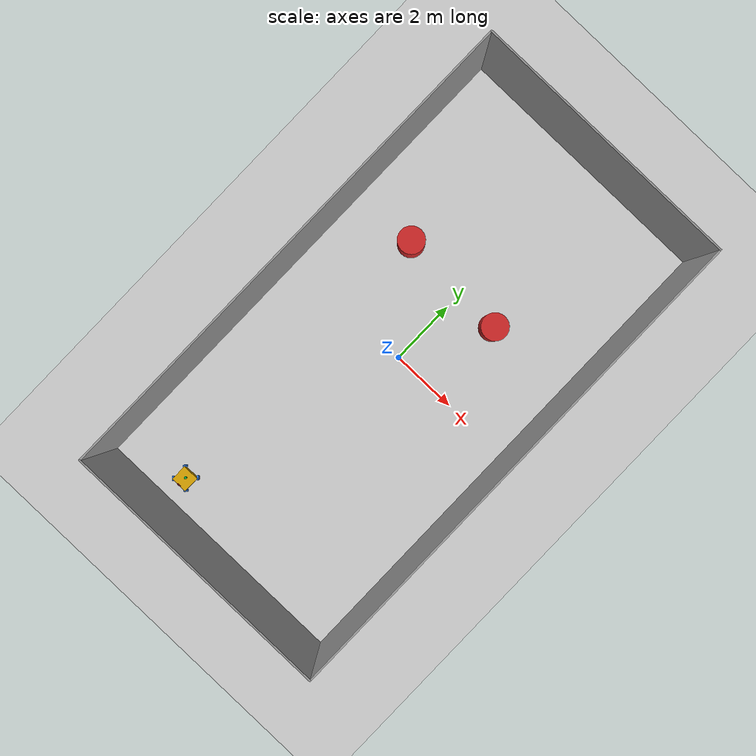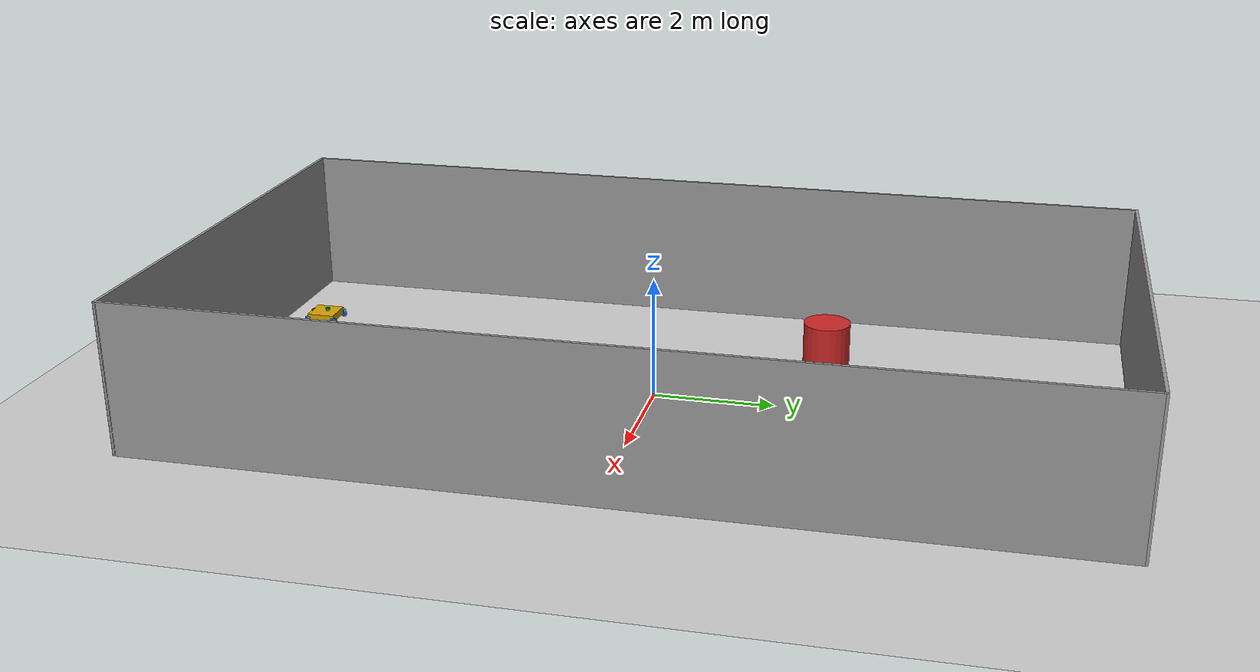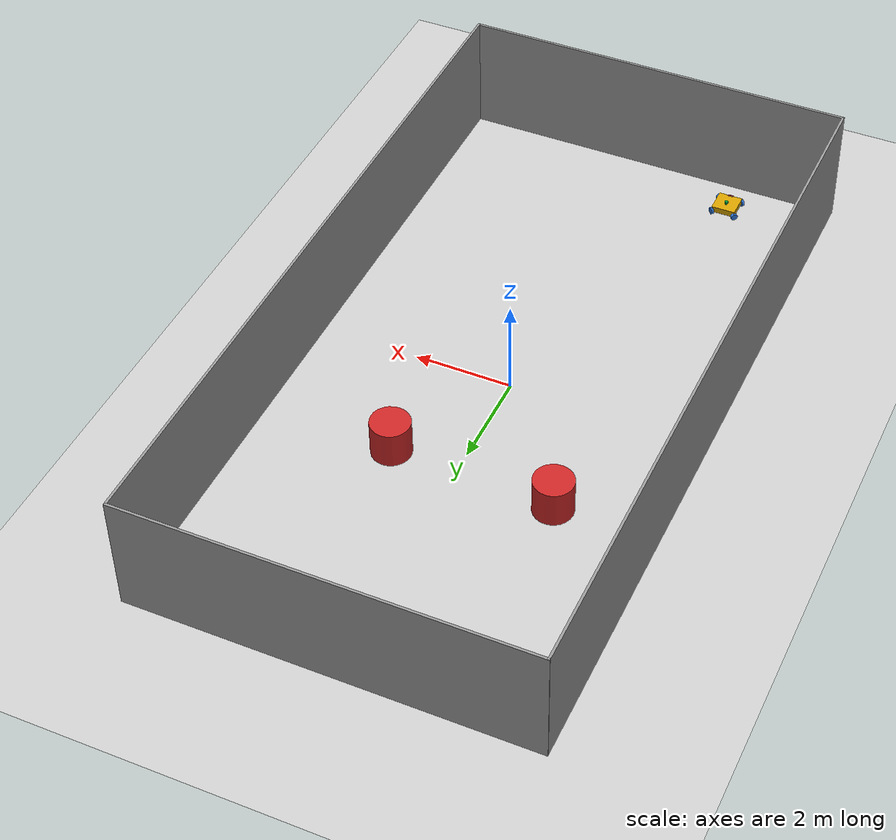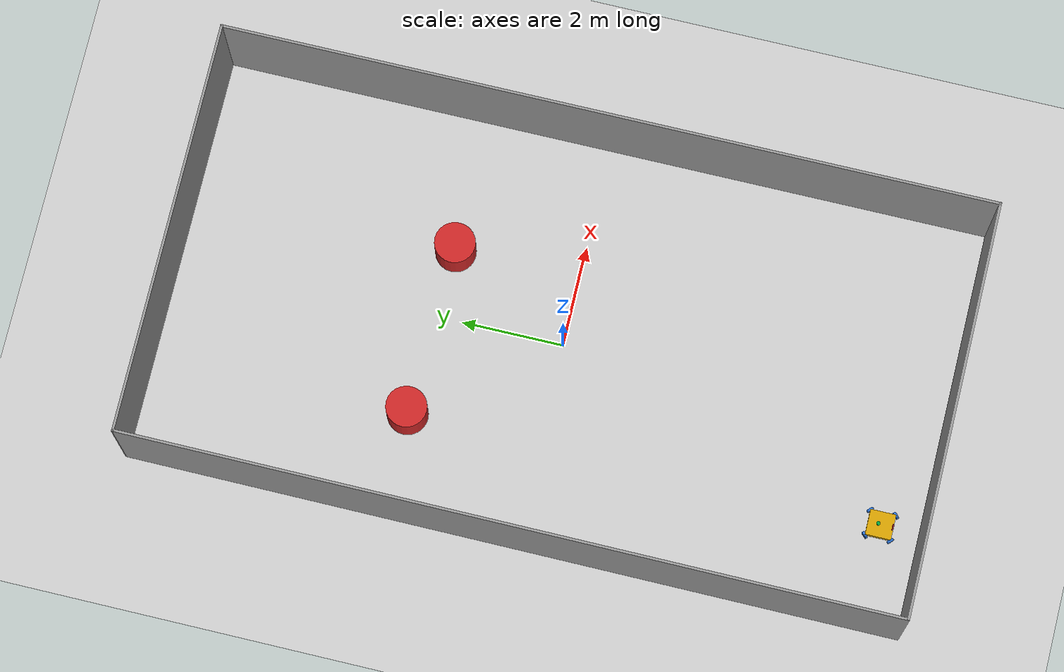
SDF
<sdf version="1.7">
 <world name="default">
  <light name="sun" type="directional">
   <pose>0 0 10 0 -0 0</pose>
   <diffuse>0.8 0.8 0.8 1</diffuse>
   <specular>0.2 0.2 0.2 1</specular>
   <attenuation>
    <range>1000</range>
    <constant>0.9</constant>
    <linear>0.01</linear>
    <quadratic>0.001</quadratic>
   </attenuation>
   <direction>-0.5 0.1 -0.9</direction>
   <spot><inner_angle>0</inner_angle><outer_angle>0</outer_angle><falloff>0</falloff></spot>
  </light>
  <model name="ground_plane">
   <static>1</static>
   <link name="link">
    <collision name="collision">
     <geometry><plane><normal>0 0 1</normal><size>100 100</size></plane></geometry>
     <surface><friction><ode><mu>100</mu><mu2>50</mu2></ode></friction></surface>
    </collision>
    <visual name="visual">
     <cast_shadows>0</cast_shadows>
     <geometry><plane><normal>0 0 1</normal><size>100 100</size></plane></geometry>
     <material>
      <script><uri>file://media/materials/scripts/gazebo.material</uri><name>Gazebo/Grey</name></script>
     </material>
    </visual>
   </link>
  </model>
  <gravity>0 0 -9.8</gravity>
  <magnetic_field>6e-06 2.3e-05 -4.2e-05</magnetic_field>
  <atmosphere type="adiabatic"/>
  <physics type="ode">
   <max_step_size>0.001</max_step_size>
   <real_time_factor>1</real_time_factor>
   <real_time_update_rate>1000</real_time_update_rate>
  </physics>
  <scene><ambient>0.4 0.4 0.4 1</ambient><background>0.7 0.7 0.7 1</background><shadows>1</shadows></scene>
  <spherical_coordinates>
   <surface_model>EARTH_WGS84</surface_model>
   <latitude_deg>0</latitude_deg>
   <longitude_deg>0</longitude_deg>
   <elevation>0</elevation>
   <heading_deg>0</heading_deg>
  </spherical_coordinates>
  <light name="user_directional_light_0" type="directional">
   <pose>-5.63054 -11.2657 1 0 -0 0</pose>
   <diffuse>0.5 0.5 0.5 1</diffuse>
   <specular>0.1 0.1 0.1 1</specular>
   <direction>0.1 0.1 -0.9</direction>
   <attenuation>
    <range>20</range>
    <constant>0.5</constant>
    <linear>0.01</linear>
    <quadratic>0.001</quadratic>
   </attenuation>
   <spot><inner_angle>0</inner_angle><outer_angle>0</outer_angle><falloff>0</falloff></spot>
  </light>
  <light name="user_directional_light_1" type="directional">
   <pose>10.4762 9.60881 1 0 -0 0</pose>
   <diffuse>0.5 0.5 0.5 1</diffuse>
   <specular>0.1 0.1 0.1 1</specular>
   <direction>0.1 0.1 -0.9</direction>
   <attenuation>
    <range>20</range>
    <constant>0.5</constant>
    <linear>0.01</linear>
    <quadratic>0.001</quadratic>
   </attenuation>
   <spot><inner_angle>0</inner_angle><outer_angle>0</outer_angle><falloff>0</falloff></spot>
  </light>
  <audio><device>default</device></audio>
  <model name="linorobot2">
   <link name="base_footprint">
    <inertial>
     <pose>0.002669 0 0.121513 0 -0 0</pose>
     <mass>10.235</mass>
     <inertia>
      <ixx>0.224447</ixx>
      <ixy>0</ixy>
      <ixz>-0.00127503</ixz>
      <iyy>0.232052</iyy>
      <iyz>0</iyz>
      <izz>0.424674</izz>
     </inertia>
    </inertial>
    <collision name="base_footprint_fixed_joint_lump__base_link_collision">
     <pose>0 0 0.1195 0 -0 0</pose>
     <geometry><box><size>0.5 0.5 0.129</size></box></geometry>
    </collision>
    <collision name="base_footprint_fixed_joint_lump__camera_link_collision_1">
     <pose>0.2375 0 0.1795 0 -0 0</pose>
     <geometry><box><size>0.03 0.124 0.03</size></box></geometry>
    </collision>
    <collision name="base_footprint_fixed_joint_lump__laser_collision_2">
     <pose>-0.0475 0 0.2195 0 -0 0</pose>
     <geometry><cylinder><length>0.05</length><radius>0.0375</radius></cylinder></geometry>
    </collision>
    <visual name="base_footprint_fixed_joint_lump__base_link_visual">
     <pose>0 0 0.1195 0 -0 0</pose>
     <geometry><box><size>0.5 0.5 0.129</size></box></geometry>
     <material>
      <ambient>0.8392 0.6314 0 1</ambient>
      <diffuse>0.8392 0.6314 0 1</diffuse>
      <specular>0.99 0.99 0.99 1</specular>
      <emissive>0 0 0 0</emissive>
     </material>
    </visual>
    <visual name="base_footprint_fixed_joint_lump__camera_link_visual_1">
     <pose>0.2375 0 0.1795 0 -0 0</pose>
     <geometry><box><size>0.03 0.124 0.03</size></box></geometry>
     <material>
      <ambient>0.416 0.051 0.047 1</ambient>
      <diffuse>0.416 0.051 0.047 1</diffuse>
      <specular>0.416 0.051 0.047 1</specular>
      <emissive>0.416 0.051 0.047 1</emissive>
     </material>
    </visual>
    <visual name="base_footprint_fixed_joint_lump__laser_visual_2">
     <pose>-0.0475 0 0.2195 0 -0 0</pose>
     <geometry><cylinder><length>0.05</length><radius>0.0375</radius></cylinder></geometry>
     <material>
      <ambient>0.003 0.639 0.223 1</ambient>
      <diffuse>0.003 0.639 0.223 1</diffuse>
      <specular>0.003 0.639 0.223 1</specular>
      <emissive>0 0 0 0</emissive>
     </material>
    </visual>
    <sensor name="camera" type="depth">
     <always_on>1</always_on>
     <update_rate>30</update_rate>
     <camera name="camera">
      <horizontal_fov>1.50098</horizontal_fov>
      <image><width>640</width><height>480</height><format>R8G8B8</format></image>
      <clip><near>0.1</near><far>100</far></clip>
     </camera>
     <plugin name="camera_controller" filename="libgazebo_ros_camera.so">
      <ros>
       <remapping>/camera/camera_info:=/camera/color/camera_info</remapping>
       <remapping>/camera/image_raw:=/camera/color/image_raw</remapping>
       <remapping>/camera/points:=/camera/depth/color/points</remapping>
       <remapping>/camera/depth/image_raw:=/camera/depth/image_rect_raw</remapping>
       <qos>
        <topic name="/camera/depth/color/points"><publisher><reliability>best_effort</reliability></publisher></topic>
       </qos>
      </ros>
      <min_depth>0.015</min_depth>
      <max_depth>3.0</max_depth>
      <hack_baseline>0.07</hack_baseline>
      <frame_name>camera_depth_link</frame_name>
      <distortion_k1>0.00000001</distortion_k1>
      <distortion_k2>0.00000001</distortion_k2>
      <distortion_k3>0.00000001</distortion_k3>
      <distortion_t1>0.00000001</distortion_t1>
      <distortion_t2>0.00000001</distortion_t2>
     </plugin>
     <pose>0.2375 0 0.1795 0 -0 0</pose>
    </sensor>
    <sensor name="imu_sensor" type="imu">
     <always_on>1</always_on>
     <update_rate>20</update_rate>
     <visualize>1</visualize>
     <topic>__default_topic__</topic>
     <plugin name="imu_plugin" filename="libgazebo_ros_imu_sensor.so">
      <ros><remapping>~/out:=imu/data</remapping></ros>
      <topicName>imu/data</topicName>
      <bodyName>imu_link</bodyName>
      <updateRateHZ>10.0</updateRateHZ>
      <gaussianNoise>0.0</gaussianNoise>
      <xyzOffset>0 0 0</xyzOffset>
      <rpyOffset>0 0 0</rpyOffset>
      <frameName>imu_link</frameName>
      <initialOrientationAsReference>0</initialOrientationAsReference>
     </plugin>
     <pose>0 0 0.1195 0 -0 0</pose>
    </sensor>
    <sensor name="laser_lidar" type="ray">
     <always_on>1</always_on>
     <update_rate>10</update_rate>
     <visualize>0</visualize>
     <ray>
      <scan>
       <horizontal>
        <samples>360</samples>
        <resolution>1</resolution>
        <min_angle>-3.1416</min_angle>
        <max_angle>3.1416</max_angle>
       </horizontal>
       <vertical><samples>1</samples><min_angle>0</min_angle><max_angle>0</max_angle></vertical>
      </scan>
      <range><min>0.08</min><max>12</max><resolution>0.01</resolution></range>
     </ray>
     <plugin name="laser_lidar_controller" filename="libgazebo_ros_ray_sensor.so">
      <ros><remapping>~/out:=scan</remapping></ros>
      <output_type>sensor_msgs/LaserScan</output_type>
      <alwaysOn>1</alwaysOn>
      <updateRate>10</updateRate>
      <topicName>scan</topicName>
      <frame_name>laser</frame_name>
      <output_type>sensor_msgs/LaserScan</output_type>
     </plugin>
     <pose>-0.0475 0 0.2445 0 -0 0</pose>
    </sensor>
   </link>
   <joint name="front_left_wheel_joint" type="revolute">
    <pose relative_to="base_footprint">0.25 0.25 0.07162 0 0 -0.785398</pose>
    <parent>base_footprint</parent>
    <child>front_left_wheel_link</child>
    <axis>
     <xyz>0 1 0</xyz>
     <limit><lower>-1e+16</lower><upper>1e+16</upper></limit>
     <dynamics><spring_reference>0</spring_reference><spring_stiffness>0</spring_stiffness></dynamics>
    </axis>
   </joint>
   <link name="front_left_wheel_link">
    <pose relative_to="front_left_wheel_joint">0 0 0 0 -0 0</pose>
    <inertial>
     <mass>0.6</mass>
     <inertia>
      <ixx>0.00123106</ixx>
      <ixy>0</ixy>
      <ixz>0</ixz>
      <iyy>0.00123106</iyy>
      <iyz>0</iyz>
      <izz>0.00123106</izz>
     </inertia>
    </inertial>
    <collision name="front_left_wheel_link_collision">
     <pose>0 0 0 1.5708 -0 0</pose>
     <geometry><cylinder><length>0.05</length><radius>0.07162</radius></cylinder></geometry>
     <surface><friction><ode><mu>0.01</mu><mu2>0.01</mu2></ode></friction></surface>
    </collision>
    <visual name="front_left_wheel_link_visual">
     <pose>0 0 0 1.5708 -0 0</pose>
     <geometry><cylinder><length>0.05</length><radius>0.07162</radius></cylinder></geometry>
     <material>
      <ambient>0.1764 0.4588 0.8509 1</ambient>
      <diffuse>0.1764 0.4588 0.8509 1</diffuse>
      <specular>0.1764 0.4588 0.8509 1</specular>
      <emissive>0 0 0 0</emissive>
     </material>
    </visual>
   </link>
   <joint name="front_right_wheel_joint" type="revolute">
    <pose relative_to="base_footprint">0.25 -0.25 0.07162 0 -0 0.785398</pose>
    <parent>base_footprint</parent>
    <child>front_right_wheel_link</child>
    <axis>
     <xyz>0 1 0</xyz>
     <limit><lower>-1e+16</lower><upper>1e+16</upper></limit>
     <dynamics><spring_reference>0</spring_reference><spring_stiffness>0</spring_stiffness></dynamics>
    </axis>
   </joint>
   <link name="front_right_wheel_link">
    <pose relative_to="front_right_wheel_joint">0 0 0 0 -0 0</pose>
    <inertial>
     <mass>0.6</mass>
     <inertia>
      <ixx>0.00123106</ixx>
      <ixy>0</ixy>
      <ixz>0</ixz>
      <iyy>0.00123106</iyy>
      <iyz>0</iyz>
      <izz>0.00123106</izz>
     </inertia>
    </inertial>
    <collision name="front_right_wheel_link_collision">
     <pose>0 0 0 1.5708 -0 0</pose>
     <geometry><cylinder><length>0.05</length><radius>0.07162</radius></cylinder></geometry>
     <surface><friction><ode><mu>0.01</mu><mu2>0.01</mu2></ode></friction></surface>
    </collision>
    <visual name="front_right_wheel_link_visual">
     <pose>0 0 0 1.5708 -0 0</pose>
     <geometry><cylinder><length>0.05</length><radius>0.07162</radius></cylinder></geometry>
     <material>
      <ambient>0.1764 0.4588 0.8509 1</ambient>
      <diffuse>0.1764 0.4588 0.8509 1</diffuse>
      <specular>0.1764 0.4588 0.8509 1</specular>
      <emissive>0 0 0 0</emissive>
     </material>
    </visual>
   </link>
   <joint name="rear_left_wheel_joint" type="revolute">
    <pose relative_to="base_footprint">-0.25 0.25 0.07162 0 -0 0.785398</pose>
    <parent>base_footprint</parent>
    <child>rear_left_wheel_link</child>
    <axis>
     <xyz>0 1 0</xyz>
     <limit><lower>-1e+16</lower><upper>1e+16</upper></limit>
     <dynamics><spring_reference>0</spring_reference><spring_stiffness>0</spring_stiffness></dynamics>
    </axis>
   </joint>
   <link name="rear_left_wheel_link">
    <pose relative_to="rear_left_wheel_joint">0 0 0 0 -0 0</pose>
    <inertial>
     <mass>0.6</mass>
     <inertia>
      <ixx>0.00123106</ixx>
      <ixy>0</ixy>
      <ixz>0</ixz>
      <iyy>0.00123106</iyy>
      <iyz>0</iyz>
      <izz>0.00123106</izz>
     </inertia>
    </inertial>
    <collision name="rear_left_wheel_link_collision">
     <pose>0 0 0 1.5708 -0 0</pose>
     <geometry><cylinder><length>0.05</length><radius>0.07162</radius></cylinder></geometry>
     <surface><friction><ode><mu>0.01</mu><mu2>0.01</mu2></ode></friction></surface>
    </collision>
    <visual name="rear_left_wheel_link_visual">
     <pose>0 0 0 1.5708 -0 0</pose>
     <geometry><cylinder><length>0.05</length><radius>0.07162</radius></cylinder></geometry>
     <material>
      <ambient>0.1764 0.4588 0.8509 1</ambient>
      <diffuse>0.1764 0.4588 0.8509 1</diffuse>
      <specular>0.1764 0.4588 0.8509 1</specular>
      <emissive>0 0 0 0</emissive>
     </material>
    </visual>
   </link>
   <joint name="rear_right_wheel_joint" type="revolute">
    <pose relative_to="base_footprint">-0.25 -0.25 0.07162 0 0 -0.785398</pose>
    <parent>base_footprint</parent>
    <child>rear_right_wheel_link</child>
    <axis>
     <xyz>0 1 0</xyz>
     <limit><lower>-1e+16</lower><upper>1e+16</upper></limit>
     <dynamics><spring_reference>0</spring_reference><spring_stiffness>0</spring_stiffness></dynamics>
    </axis>
   </joint>
   <link name="rear_right_wheel_link">
    <pose relative_to="rear_right_wheel_joint">0 0 0 0 -0 0</pose>
    <inertial>
     <mass>0.6</mass>
     <inertia>
      <ixx>0.00123106</ixx>
      <ixy>0</ixy>
      <ixz>0</ixz>
      <iyy>0.00123106</iyy>
      <iyz>0</iyz>
      <izz>0.00123106</izz>
     </inertia>
    </inertial>
    <collision name="rear_right_wheel_link_collision">
     <pose>0 0 0 1.5708 -0 0</pose>
     <geometry><cylinder><length>0.05</length><radius>0.07162</radius></cylinder></geometry>
     <surface><friction><ode><mu>0.01</mu><mu2>0.01</mu2></ode></friction></surface>
    </collision>
    <visual name="rear_right_wheel_link_visual">
     <pose>0 0 0 1.5708 -0 0</pose>
     <geometry><cylinder><length>0.05</length><radius>0.07162</radius></cylinder></geometry>
     <material>
      <ambient>0.1764 0.4588 0.8509 1</ambient>
      <diffuse>0.1764 0.4588 0.8509 1</diffuse>
      <specular>0.1764 0.4588 0.8509 1</specular>
      <emissive>0 0 0 0</emissive>
     </material>
    </visual>
   </link>
   <static>0</static>
   <plugin name="object_controller" filename="libgazebo_ros_planar_move.so">
    <ros><remapping>odom:=odom/unfiltered</remapping></ros>
    <command_topic>cmd_vel</command_topic>
    <odometry_topic>odom/unfiltered</odometry_topic>
    <odometry_frame>odom</odometry_frame>
    <odometry_rate>20.0</odometry_rate>
    <robot_base_frame>base_footprint</robot_base_frame>
    <publish_odom>1</publish_odom>
    <publish_odom_tf>0</publish_odom_tf>
   </plugin>
   <pose>-2.01692 -6.70453 -4e-06 1.4e-05 0 -1.57045</pose>
  </model>
  <model name="abuRobocon_wall">
   <pose>-0.006702 0.07141 0 0 -0 0</pose>
   <link name="Wall_38">
    <collision name="Wall_38_Collision">
     <geometry><box><size>8.14527 0.05 2.5</size></box></geometry>
     <pose>0 0 1.25 0 -0 0</pose>
    </collision>
    <visual name="Wall_38_Visual">
     <pose>0 0 1.25 0 -0 0</pose>
     <geometry><box><size>8.14527 0.05 2.5</size></box></geometry>
     <material>
      <script><uri>file://media/materials/scripts/gazebo.material</uri><name>Gazebo/Grey</name></script>
      <ambient>1 1 1 1</ambient>
     </material>
     <meta><layer>0</layer></meta>
    </visual>
    <pose>0.002832 -7.55513 0 0 -0 -0.000398</pose>
   </link>
   <link name="Wall_45">
    <collision name="Wall_45_Collision">
     <geometry><box><size>8.1 0.05 2.5</size></box></geometry>
     <pose>0 0 1.25 0 -0 0</pose>
    </collision>
    <visual name="Wall_45_Visual">
     <pose>0 0 1.25 0 -0 0</pose>
     <geometry><box><size>8.1 0.05 2.5</size></box></geometry>
     <material>
      <script><uri>file://media/materials/scripts/gazebo.material</uri><name>Gazebo/Grey</name></script>
      <ambient>1 1 1 1</ambient>
     </material>
     <meta><layer>0</layer></meta>
    </visual>
    <pose>0.003543 7.55675 0 0 -0 3.14159</pose>
   </link>
   <link name="Wall_47">
    <collision name="Wall_47_Collision">
     <geometry><box><size>15.1552 0.05 2.5</size></box></geometry>
     <pose>0 0 1.25 0 -0 0</pose>
    </collision>
    <visual name="Wall_47_Visual">
     <pose>0 0 1.25 0 -0 0</pose>
     <geometry><box><size>15.1552 0.05 2.5</size></box></geometry>
     <material>
      <script><uri>file://media/materials/scripts/gazebo.material</uri><name>Gazebo/Grey</name></script>
      <ambient>1 1 1 1</ambient>
     </material>
     <meta><layer>0</layer></meta>
    </visual>
    <pose>4.03951 -0.002303 0 0 -0 1.57225</pose>
   </link>
   <link name="Wall_53">
    <collision name="Wall_53_Collision">
     <geometry><box><size>15.1538 0.05 2.5</size></box></geometry>
     <pose>0 0 1.25 0 -0 0</pose>
    </collision>
    <visual name="Wall_53_Visual">
     <pose>0 0 1.25 0 -0 0</pose>
     <geometry><box><size>15.1538 0.05 2.5</size></box></geometry>
     <material>
      <script><uri>file://media/materials/scripts/gazebo.material</uri><name>Gazebo/Grey</name></script>
      <ambient>1 1 1 1</ambient>
     </material>
     <meta><layer>0</layer></meta>
    </visual>
    <pose>-4.03596 -0.001617 0 0 -0 1.56888</pose>
   </link>
   <static>1</static>
  </model>
  <model name="obs_cylinder">
   <link name="link">
    <inertial>
     <mass>1</mass>
     <inertia><ixx>0.145833</ixx><ixy>0</ixy><ixz>0</ixz><iyy>0.145833</iyy><iyz>0</iyz><izz>0.125</izz></inertia>
    </inertial>
    <visual name="visual">
     <geometry><cylinder><radius>0.4</radius><length>1.5</length></cylinder></geometry>
     <material>
      <script><name>Gazebo/Red</name><uri>file://media/materials/scripts/gazebo.material</uri></script>
      <shader type="pixel"><normal_map>__default__</normal_map></shader>
      <ambient>1 0 0 1</ambient>
      <diffuse>1 0 0 1</diffuse>
      <specular>0.1 0.1 0.1 1</specular>
      <emissive>0 0 0 1</emissive>
     </material>
    </visual>
    <collision name="collision_1">
     <geometry><cylinder><radius>0.8</radius><length>1.5</length></cylinder></geometry>
     <surface>
      <friction>
       <ode><mu>1</mu><mu2>1</mu2><fdir1>0 0 0</fdir1><slip1>0</slip1><slip2>0</slip2></ode>
       <torsional>
        <coefficient>1</coefficient>
        <patch_radius>0</patch_radius>
        <surface_radius>0</surface_radius>
        <use_patch_radius>1</use_patch_radius>
        <ode><slip>0</slip></ode>
       </torsional>
      </friction>
      <bounce><restitution_coefficient>0</restitution_coefficient><threshold>1e+06</threshold></bounce>
      <contact>
       <collide_without_contact>0</collide_without_contact>
       <collide_without_contact_bitmask>1</collide_without_contact_bitmask>
       <collide_bitmask>1</collide_bitmask>
       <ode>
        <soft_cfm>0</soft_cfm>
        <soft_erp>0.2</soft_erp>
        <kp>1e+13</kp>
        <kd>1</kd>
        <max_vel>0.01</max_vel>
        <min_depth>0</min_depth>
       </ode>
       <bullet>
        <split_impulse>1</split_impulse>
        <split_impulse_penetration_threshold>-0.01</split_impulse_penetration_threshold>
        <soft_cfm>0</soft_cfm>
        <soft_erp>0.2</soft_erp>
        <kp>1e+13</kp>
        <kd>1</kd>
       </bullet>
      </contact>
     </surface>
    </collision>
    <collision name="collision">
     <geometry><cylinder><radius>0.8</radius><length>1.5</length></cylinder></geometry>
     <surface>
      <friction>
       <ode><mu>1</mu><mu2>1</mu2><fdir1>0 0 0</fdir1><slip1>0</slip1><slip2>0</slip2></ode>
       <torsional>
        <coefficient>1</coefficient>
        <patch_radius>0</patch_radius>
        <surface_radius>0</surface_radius>
        <use_patch_radius>1</use_patch_radius>
        <ode><slip>0</slip></ode>
       </torsional>
      </friction>
      <bounce><restitution_coefficient>0</restitution_coefficient><threshold>1e+06</threshold></bounce>
      <contact>
       <collide_without_contact>0</collide_without_contact>
       <collide_without_contact_bitmask>1</collide_without_contact_bitmask>
       <collide_bitmask>1</collide_bitmask>
       <ode>
        <soft_cfm>0</soft_cfm>
        <soft_erp>0.2</soft_erp>
        <kp>1e+13</kp>
        <kd>1</kd>
        <max_vel>0.01</max_vel>
        <min_depth>0</min_depth>
       </ode>
       <bullet>
        <split_impulse>1</split_impulse>
        <split_impulse_penetration_threshold>-0.01</split_impulse_penetration_threshold>
        <soft_cfm>0</soft_cfm>
        <soft_erp>0.2</soft_erp>
        <kp>1e+13</kp>
        <kd>1</kd>
       </bullet>
      </contact>
     </surface>
    </collision>
   </link>
   <static>0</static>
   <pose>-1.99632 2.59076 0 0 -0 0</pose>
  </model>
  <model name="obs_cylinder_clone">
   <link name="link">
    <inertial>
     <mass>1</mass>
     <inertia><ixx>0.145833</ixx><ixy>0</ixy><ixz>0</ixz><iyy>0.145833</iyy><iyz>0</iyz><izz>0.125</izz></inertia>
    </inertial>
    <visual name="visual">
     <geometry><cylinder><radius>0.4</radius><length>1.5</length></cylinder></geometry>
     <material>
      <script><name>Gazebo/Red</name><uri>file://media/materials/scripts/gazebo.material</uri></script>
      <shader type="pixel"><normal_map>__default__</normal_map></shader>
      <ambient>1 0 0 1</ambient>
      <diffuse>1 0 0 1</diffuse>
      <specular>0.1 0.1 0.1 1</specular>
      <emissive>0 0 0 1</emissive>
     </material>
    </visual>
    <collision name="collision_1">
     <geometry><cylinder><radius>0.8</radius><length>1.5</length></cylinder></geometry>
     <surface>
      <friction>
       <ode><mu>1</mu><mu2>1</mu2><fdir1>0 0 0</fdir1><slip1>0</slip1><slip2>0</slip2></ode>
       <torsional>
        <coefficient>1</coefficient>
        <patch_radius>0</patch_radius>
        <surface_radius>0</surface_radius>
        <use_patch_radius>1</use_patch_radius>
        <ode><slip>0</slip></ode>
       </torsional>
      </friction>
      <bounce><restitution_coefficient>0</restitution_coefficient><threshold>1e+06</threshold></bounce>
      <contact>
       <collide_without_contact>0</collide_without_contact>
       <collide_without_contact_bitmask>1</collide_without_contact_bitmask>
       <collide_bitmask>1</collide_bitmask>
       <ode>
        <soft_cfm>0</soft_cfm>
        <soft_erp>0.2</soft_erp>
        <kp>1e+13</kp>
        <kd>1</kd>
        <max_vel>0.01</max_vel>
        <min_depth>0</min_depth>
       </ode>
       <bullet>
        <split_impulse>1</split_impulse>
        <split_impulse_penetration_threshold>-0.01</split_impulse_penetration_threshold>
        <soft_cfm>0</soft_cfm>
        <soft_erp>0.2</soft_erp>
        <kp>1e+13</kp>
        <kd>1</kd>
       </bullet>
      </contact>
     </surface>
    </collision>
    <collision name="collision">
     <geometry><cylinder><radius>0.8</radius><length>1.5</length></cylinder></geometry>
     <surface>
      <friction>
       <ode><mu>1</mu><mu2>1</mu2><fdir1>0 0 0</fdir1><slip1>0</slip1><slip2>0</slip2></ode>
       <torsional>
        <coefficient>1</coefficient>
        <patch_radius>0</patch_radius>
        <surface_radius>0</surface_radius>
        <use_patch_radius>1</use_patch_radius>
        <ode><slip>0</slip></ode>
       </torsional>
      </friction>
      <bounce><restitution_coefficient>0</restitution_coefficient><threshold>1e+06</threshold></bounce>
      <contact>
       <collide_without_contact>0</collide_without_contact>
       <collide_without_contact_bitmask>1</collide_without_contact_bitmask>
       <collide_bitmask>1</collide_bitmask>
       <ode>
        <soft_cfm>0</soft_cfm>
        <soft_erp>0.2</soft_erp>
        <kp>1e+13</kp>
        <kd>1</kd>
        <max_vel>0.01</max_vel>
        <min_depth>0</min_depth>
       </ode>
       <bullet>
        <split_impulse>1</split_impulse>
        <split_impulse_penetration_threshold>-0.01</split_impulse_penetration_threshold>
        <soft_cfm>0</soft_cfm>
        <soft_erp>0.2</soft_erp>
        <kp>1e+13</kp>
        <kd>1</kd>
       </bullet>
      </contact>
     </surface>
    </collision>
   </link>
   <static>0</static>
   <pose>1.34338 2.45698 0 0 -0 0</pose>
  </model>
 </world>
</sdf>
